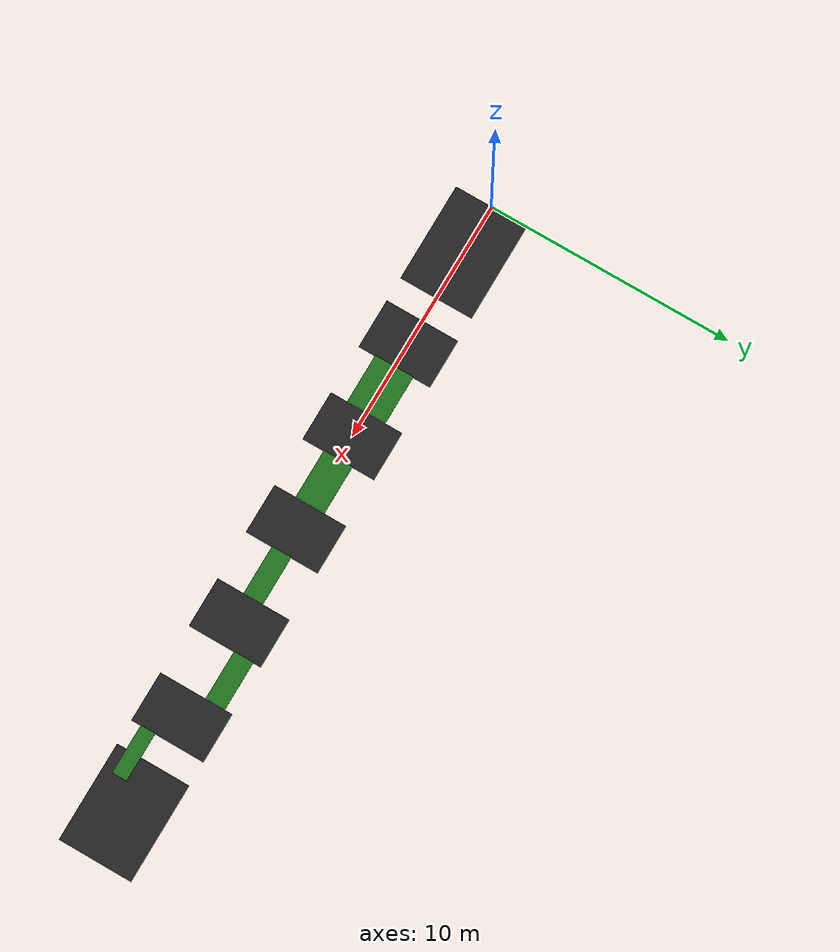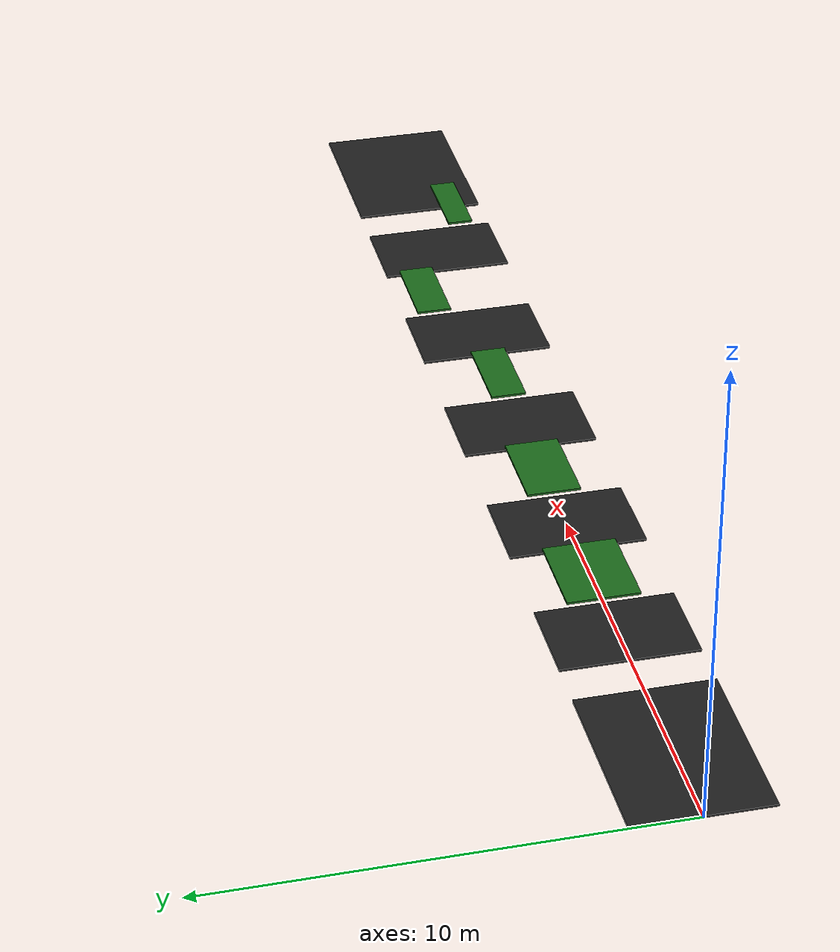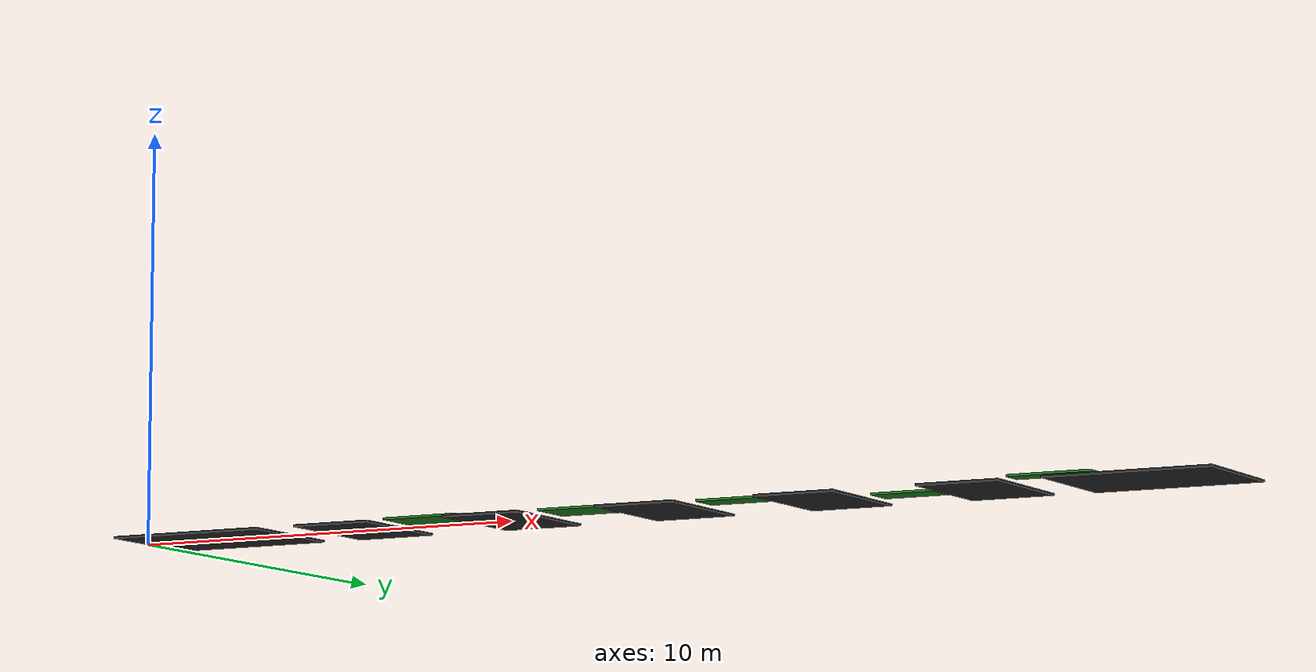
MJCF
<?xml version='1.0' encoding='utf-8'?>
<mujoco model="corridor_simple_learning">
  <compiler angle="degree" autolimits="true" />
  <option timestep="0.005" gravity="0 0 -9.81" />
  <size njmax="4000" nconmax="1000" />
<asset>
    <texture name="tex_grid" type="2d" builtin="checker" rgb1="0.1 0.1 0.1" rgb2="0.15 0.15 0.15" width="300" height="300" mark="edge" markrgb="0.8 0.8 0.8" />

    <texture name="tex_wall" type="2d" builtin="checker" rgb1="0.5 0.5 0.5" rgb2="0.55 0.55 0.55" width="300" height="300" />

    <material name="mat_floor" texture="tex_grid" texrepeat="2 2" specular="0.1" shininess="0.1" />

    <material name="mat_wall" texture="tex_wall" texrepeat="1 1" rgba="0.5 0.5 0.5 0" specular="0.3" shininess="0.3" />

    <material name="mat_bump" texture="tex_wall" rgba="0.5 0.5 0.5 1" specular="0.3" shininess="0.3" />

    <material name="mat_bridge" texture="tex_wall" rgba="0.2 0.8 0.2 1" specular="0.3" shininess="0.3" />
  </asset>
  <worldbody>
<light name="key_light" pos="4 4 4" dir="-1 -1 -1" directional="true" diffuse="1.1 1.1 1.1" specular="0.4 0.4 0.4" castshadow="true" />

<light name="fill_light" pos="-6 4 2" dir="1 -0.5 -1" directional="true" ambient="0.4 0.4 0.4" diffuse="0.6 0.6 0.6" specular="0.2 0.2 0.2" castshadow="false" />

    <!-- Walls -->
    <geom name="wall_left" type="box" size="25.000 0.025 4.000" pos="25.000 -1.525 4.000" material="mat_wall" />
    <geom name="wall_right" type="box" size="25.000 0.025 4.000" pos="25.000 1.525 4.000" material="mat_wall" />

    <!-- CURRICULUM LEARNING: Start with mostly solid floor, few gaps -->

    <!-- Solid floor sections (safe areas) -->
    <geom name="floor_start" type="box" size="2.0 1.5 0.025" pos="2.0 0 0.025" material="mat_floor" />
    <geom name="floor_1" type="box" size="1.0 1.5 0.025" pos="6.0 0 0.025" material="mat_floor" />
    <geom name="floor_2" type="box" size="1.0 1.5 0.025" pos="10.0 0 0.025" material="mat_floor" />
    <geom name="floor_3" type="box" size="1.0 1.5 0.025" pos="14.0 0 0.025" material="mat_floor" />
    <geom name="floor_4" type="box" size="1.0 1.5 0.025" pos="18.0 0 0.025" material="mat_floor" />
    <geom name="floor_5" type="box" size="1.0 1.5 0.025" pos="22.0 0 0.025" material="mat_floor" />
    <geom name="floor_end" type="box" size="2.0 1.5 0.025" pos="26.0 0 0.025" material="mat_floor" />

    <!-- First gap with WIDE bridge (easy) -->
    <geom name="bridge_1" type="box" size="1.0 0.8 0.025" pos="8.0 0 0.15" material="mat_bridge" />

    <!-- Second gap with medium bridge -->
    <geom name="bridge_2" type="box" size="1.0 0.6 0.025" pos="12.0 0 0.15" material="mat_bridge" />

    <!-- Third gap with narrow bridge -->
    <geom name="bridge_3" type="box" size="1.0 0.4 0.025" pos="16.0 0 0.15" material="mat_bridge" />

    <!-- Fourth gap with side bridge (teaches lateral movement) -->
    <geom name="bridge_4" type="box" size="1.0 0.4 0.025" pos="20.0 0.8 0.15" material="mat_bridge" />

    <!-- Final gap with narrow side bridge (hardest) -->
    <geom name="bridge_5" type="box" size="1.0 0.3 0.025" pos="24.0 -0.8 0.15" material="mat_bridge" />

  </worldbody>
</mujoco>
